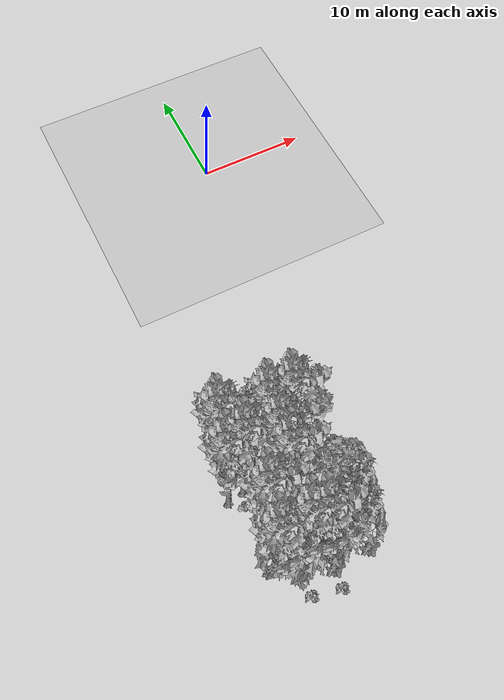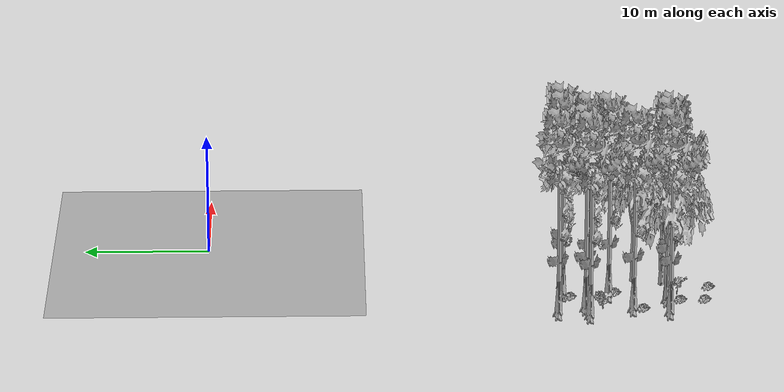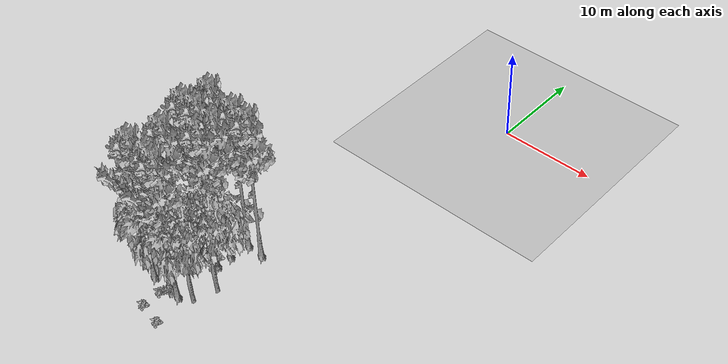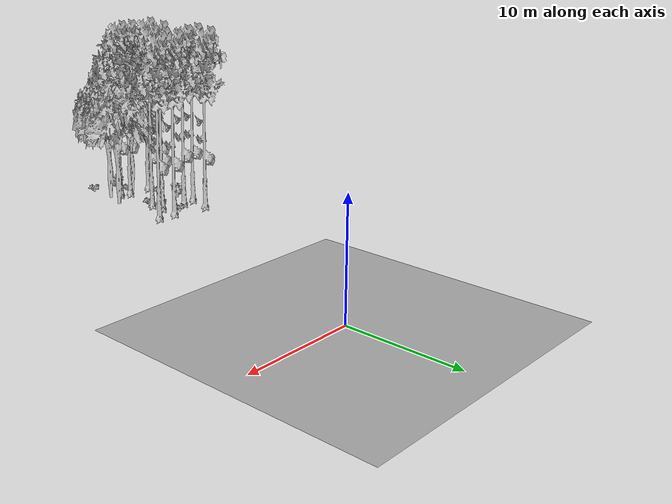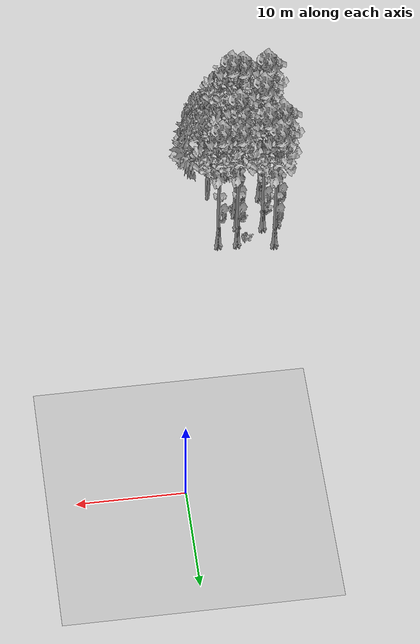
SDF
<sdf version="1.7">
 <world name="default">
  <model name="ground_plane">
   <static>1</static>
   <link name="link">
    <collision name="collision">
     <pose>-50 0 0 0 -0 0</pose>
     <geometry><plane><normal>0 0 1</normal><size>80 80</size></plane></geometry>
     <surface><contact><ode><min_depth>0.01</min_depth><max_vel>0</max_vel></ode></contact></surface>
    </collision>
    <visual name="grass">
     <cast_shadows>0</cast_shadows>
     <geometry>
      <mesh>
       <scale>0.46714285714285714 0.46714285714285714 0.1</scale>
       <uri>file://grass_plane/meshes/grass_plane.dae</uri>
      </mesh>
     </geometry>
    </visual>
   </link>
  </model>
  <model name="Tree 1">
   <static>1</static>
   <pose>-8.566626045138978 -28.20236871069075 0 1.57079 -0 0</pose>
   <link name="link">
    <collision name="collision">
     <geometry><mesh><scale>3.5 5 3.5</scale><uri>model://tree_9/meshes/tree_9.obj</uri></mesh></geometry>
    </collision>
    <visual name="visual">
     <geometry><mesh><scale>3.5 5 3.5</scale><uri>model://tree_9/meshes/tree_9.obj</uri></mesh></geometry>
    </visual>
   </link>
  </model>
  <model name="Tree 17">
   <static>1</static>
   <pose>-12.710359275981453 -30.128625494422614 0 1.57079 -0 0</pose>
   <link name="link">
    <collision name="collision">
     <geometry><mesh><scale>3.5 5 3.5</scale><uri>model://tree_9/meshes/tree_9.obj</uri></mesh></geometry>
    </collision>
    <visual name="visual">
     <geometry><mesh><scale>3.5 5 3.5</scale><uri>model://tree_9/meshes/tree_9.obj</uri></mesh></geometry>
    </visual>
   </link>
  </model>
  <model name="Tree 314">
   <static>1</static>
   <pose>-8.787579068469753 -36.65526974653352 0 1.57079 -0 0</pose>
   <link name="link">
    <collision name="collision">
     <geometry><mesh><scale>3.5 5 3.5</scale><uri>model://tree_9/meshes/tree_9.obj</uri></mesh></geometry>
    </collision>
    <visual name="visual">
     <geometry><mesh><scale>3.5 5 3.5</scale><uri>model://tree_9/meshes/tree_9.obj</uri></mesh></geometry>
    </visual>
   </link>
  </model>
  <model name="Tree 355">
   <static>1</static>
   <pose>-8.85617724253829 -31.839165809337793 0 1.57079 -0 0</pose>
   <link name="link">
    <collision name="collision">
     <geometry><mesh><scale>3.5 5 3.5</scale><uri>model://tree_9/meshes/tree_9.obj</uri></mesh></geometry>
    </collision>
    <visual name="visual">
     <geometry><mesh><scale>3.5 5 3.5</scale><uri>model://tree_9/meshes/tree_9.obj</uri></mesh></geometry>
    </visual>
   </link>
  </model>
  <model name="Tree 360">
   <static>1</static>
   <pose>-7.248941151110458 -36.179678895487406 0 1.57079 -0 0</pose>
   <link name="link">
    <collision name="collision">
     <geometry><mesh><scale>3.5 5 3.5</scale><uri>model://tree_2/meshes/tree_2.obj</uri></mesh></geometry>
    </collision>
    <visual name="visual">
     <geometry><mesh><scale>3.5 5 3.5</scale><uri>model://tree_2/meshes/tree_2.obj</uri></mesh></geometry>
    </visual>
   </link>
  </model>
  <model name="Tree 388">
   <static>1</static>
   <pose>-6.759991216507341 -28.286233868423913 0 1.57079 -0 0</pose>
   <link name="link">
    <collision name="collision">
     <geometry><mesh><scale>3.5 5 3.5</scale><uri>model://tree_9/meshes/tree_9.obj</uri></mesh></geometry>
    </collision>
    <visual name="visual">
     <geometry><mesh><scale>3.5 5 3.5</scale><uri>model://tree_9/meshes/tree_9.obj</uri></mesh></geometry>
    </visual>
   </link>
  </model>
  <model name="Tree 398">
   <static>1</static>
   <pose>-8.809048964289335 -30.246149903026776 0 1.57079 -0 0</pose>
   <link name="link">
    <collision name="collision">
     <geometry><mesh><scale>3.5 5 3.5</scale><uri>model://tree_9/meshes/tree_9.obj</uri></mesh></geometry>
    </collision>
    <visual name="visual">
     <geometry><mesh><scale>3.5 5 3.5</scale><uri>model://tree_9/meshes/tree_9.obj</uri></mesh></geometry>
    </visual>
   </link>
  </model>
  <model name="Tree 424">
   <static>1</static>
   <pose>-9.775472808285386 -36.3824387563487 0 1.57079 -0 0</pose>
   <link name="link">
    <collision name="collision">
     <geometry><mesh><scale>3.5 5 3.5</scale><uri>model://tree_9/meshes/tree_9.obj</uri></mesh></geometry>
    </collision>
    <visual name="visual">
     <geometry><mesh><scale>3.5 5 3.5</scale><uri>model://tree_9/meshes/tree_9.obj</uri></mesh></geometry>
    </visual>
   </link>
  </model>
  <model name="Tree 481">
   <static>1</static>
   <pose>-11.260867193493219 -29.85612161589681 0 1.57079 -0 0</pose>
   <link name="link">
    <collision name="collision">
     <geometry><mesh><scale>3.5 5 3.5</scale><uri>model://tree_9/meshes/tree_9.obj</uri></mesh></geometry>
    </collision>
    <visual name="visual">
     <geometry><mesh><scale>3.5 5 3.5</scale><uri>model://tree_9/meshes/tree_9.obj</uri></mesh></geometry>
    </visual>
   </link>
  </model>
  <model name="Tree 513">
   <static>1</static>
   <pose>-12.182020154279947 -36.4492145026327 0 1.57079 -0 0</pose>
   <link name="link">
    <collision name="collision">
     <geometry><mesh><scale>3.5 5 3.5</scale><uri>model://tree_9/meshes/tree_9.obj</uri></mesh></geometry>
    </collision>
    <visual name="visual">
     <geometry><mesh><scale>3.5 5 3.5</scale><uri>model://tree_9/meshes/tree_9.obj</uri></mesh></geometry>
    </visual>
   </link>
  </model>
  <model name="Tree 523">
   <static>1</static>
   <pose>-6.54585174070462 -33.95757924024846 0 1.57079 -0 0</pose>
   <link name="link">
    <collision name="collision">
     <geometry><mesh><scale>3.5 5 3.5</scale><uri>model://tree_2/meshes/tree_2.obj</uri></mesh></geometry>
    </collision>
    <visual name="visual">
     <geometry><mesh><scale>3.5 5 3.5</scale><uri>model://tree_2/meshes/tree_2.obj</uri></mesh></geometry>
    </visual>
   </link>
  </model>
  <model name="Tree 547">
   <static>1</static>
   <pose>-11.449681287004893 -33.60446003877506 0 1.57079 -0 0</pose>
   <link name="link">
    <collision name="collision">
     <geometry><mesh><scale>3.5 5 3.5</scale><uri>model://tree_9/meshes/tree_9.obj</uri></mesh></geometry>
    </collision>
    <visual name="visual">
     <geometry><mesh><scale>3.5 5 3.5</scale><uri>model://tree_9/meshes/tree_9.obj</uri></mesh></geometry>
    </visual>
   </link>
  </model>
  <model name="Tree 578">
   <static>1</static>
   <pose>-10.131550711679111 -36.35330412984857 0 1.57079 -0 0</pose>
   <link name="link">
    <collision name="collision">
     <geometry><mesh><scale>3.5 5 3.5</scale><uri>model://tree_2/meshes/tree_2.obj</uri></mesh></geometry>
    </collision>
    <visual name="visual">
     <geometry><mesh><scale>3.5 5 3.5</scale><uri>model://tree_2/meshes/tree_2.obj</uri></mesh></geometry>
    </visual>
   </link>
  </model>
  <model name="Tree 602">
   <static>1</static>
   <pose>-12.09147099106944 -27.68069635881627 0 1.57079 -0 0</pose>
   <link name="link">
    <collision name="collision">
     <geometry><mesh><scale>3.5 5 3.5</scale><uri>model://tree_9/meshes/tree_9.obj</uri></mesh></geometry>
    </collision>
    <visual name="visual">
     <geometry><mesh><scale>3.5 5 3.5</scale><uri>model://tree_9/meshes/tree_9.obj</uri></mesh></geometry>
    </visual>
   </link>
  </model>
  <model name="Bush 45">
   <static>1</static>
   <pose>-9.597528412467714 -28.758761287213694 0 1.57079 -0 0</pose>
   <link name="link">
    <collision name="collision">
     <geometry><mesh><scale>2 2 2</scale><uri>model://bush_2/meshes/bush_2.obj</uri></mesh></geometry>
     <surface><contact><collide_without_contact>false</collide_without_contact></contact></surface>
    </collision>
    <visual name="visual">
     <geometry><mesh><scale>2 2 2</scale><uri>model://bush_2/meshes/bush_2.obj</uri></mesh></geometry>
    </visual>
   </link>
  </model>
  <model name="Bush 65">
   <static>1</static>
   <pose>-10.282429979599161 -37.44602392760242 0 1.57079 -0 0</pose>
   <link name="link">
    <collision name="collision">
     <geometry><mesh><scale>2 2 2</scale><uri>model://bush_2/meshes/bush_2.obj</uri></mesh></geometry>
     <surface><contact><collide_without_contact>false</collide_without_contact></contact></surface>
    </collision>
    <visual name="visual">
     <geometry><mesh><scale>2 2 2</scale><uri>model://bush_2/meshes/bush_2.obj</uri></mesh></geometry>
    </visual>
   </link>
  </model>
  <model name="Bush 75">
   <static>1</static>
   <pose>-9.410788232523856 -31.153384625359966 0 1.57079 -0 0</pose>
   <link name="link">
    <collision name="collision">
     <geometry><mesh><scale>2 2 2</scale><uri>model://bush_2/meshes/bush_2.obj</uri></mesh></geometry>
     <surface><contact><collide_without_contact>false</collide_without_contact></contact></surface>
    </collision>
    <visual name="visual">
     <geometry><mesh><scale>2 2 2</scale><uri>model://bush_2/meshes/bush_2.obj</uri></mesh></geometry>
    </visual>
   </link>
  </model>
  <model name="Bush 98">
   <static>1</static>
   <pose>-9.055194355068714 -37.23522795267844 0 1.57079 -0 0</pose>
   <link name="link">
    <collision name="collision">
     <geometry><mesh><scale>2 2 2</scale><uri>model://bush_5/meshes/bush_5.obj</uri></mesh></geometry>
     <surface><contact><collide_without_contact>false</collide_without_contact></contact></surface>
    </collision>
    <visual name="visual">
     <geometry><mesh><scale>2 2 2</scale><uri>model://bush_5/meshes/bush_5.obj</uri></mesh></geometry>
    </visual>
   </link>
  </model>
  <model name="Bush 296">
   <static>1</static>
   <pose>-11.63915858454455 -31.18435354479051 0 1.57079 -0 0</pose>
   <link name="link">
    <collision name="collision">
     <geometry><mesh><scale>2 2 2</scale><uri>model://bush_0/meshes/bush_0.obj</uri></mesh></geometry>
     <surface><contact><collide_without_contact>false</collide_without_contact></contact></surface>
    </collision>
    <visual name="visual">
     <geometry><mesh><scale>2 2 2</scale><uri>model://bush_0/meshes/bush_0.obj</uri></mesh></geometry>
    </visual>
   </link>
  </model>
  <model name="Bush 308">
   <static>1</static>
   <pose>-10.259117294133436 -39.376020417347426 0 1.57079 -0 0</pose>
   <link name="link">
    <collision name="collision">
     <geometry><mesh><scale>2 2 2</scale><uri>model://bush_2/meshes/bush_2.obj</uri></mesh></geometry>
     <surface><contact><collide_without_contact>false</collide_without_contact></contact></surface>
    </collision>
    <visual name="visual">
     <geometry><mesh><scale>2 2 2</scale><uri>model://bush_2/meshes/bush_2.obj</uri></mesh></geometry>
    </visual>
   </link>
  </model>
  <model name="Bush 354">
   <static>1</static>
   <pose>-11.861084450354923 -34.388409009065455 0 1.57079 -0 0</pose>
   <link name="link">
    <collision name="collision">
     <geometry><mesh><scale>2 2 2</scale><uri>model://bush_2/meshes/bush_2.obj</uri></mesh></geometry>
     <surface><contact><collide_without_contact>false</collide_without_contact></contact></surface>
    </collision>
    <visual name="visual">
     <geometry><mesh><scale>2 2 2</scale><uri>model://bush_2/meshes/bush_2.obj</uri></mesh></geometry>
    </visual>
   </link>
  </model>
  <model name="Bush 371">
   <static>1</static>
   <pose>-8.828793993854504 -32.34666343517408 0 1.57079 -0 0</pose>
   <link name="link">
    <collision name="collision">
     <geometry><mesh><scale>2 2 2</scale><uri>model://bush_2/meshes/bush_2.obj</uri></mesh></geometry>
     <surface><contact><collide_without_contact>false</collide_without_contact></contact></surface>
    </collision>
    <visual name="visual">
     <geometry><mesh><scale>2 2 2</scale><uri>model://bush_2/meshes/bush_2.obj</uri></mesh></geometry>
    </visual>
   </link>
  </model>
  <model name="Bush 442">
   <static>1</static>
   <pose>-7.8556121719545935 -39.880662868275 0 1.57079 -0 0</pose>
   <link name="link">
    <collision name="collision">
     <geometry><mesh><scale>2 2 2</scale><uri>model://bush_2/meshes/bush_2.obj</uri></mesh></geometry>
     <surface><contact><collide_without_contact>false</collide_without_contact></contact></surface>
    </collision>
    <visual name="visual">
     <geometry><mesh><scale>2 2 2</scale><uri>model://bush_2/meshes/bush_2.obj</uri></mesh></geometry>
    </visual>
   </link>
  </model>
 </world>
</sdf>
